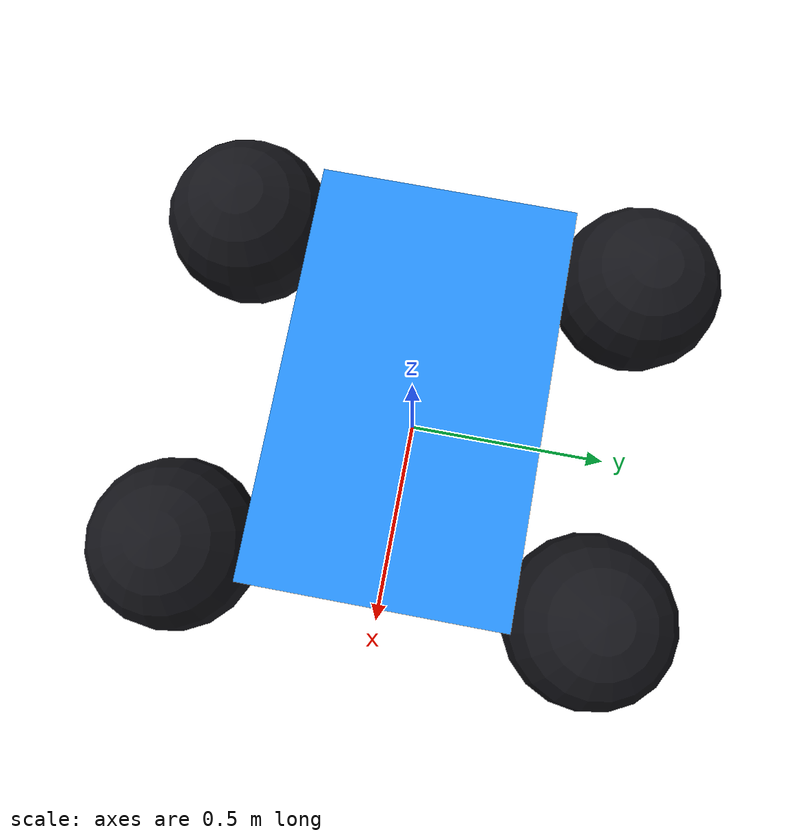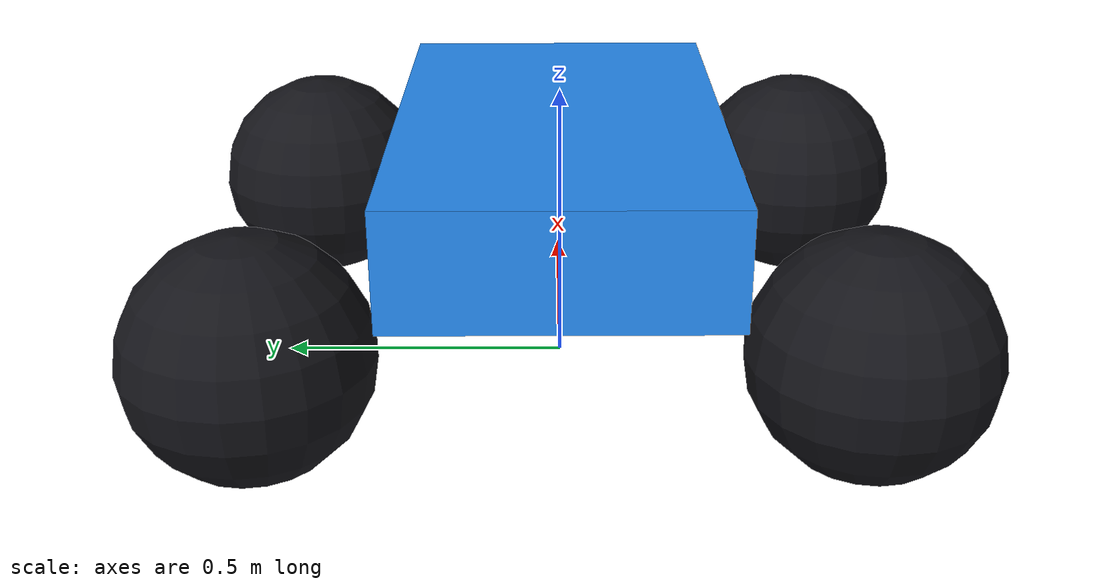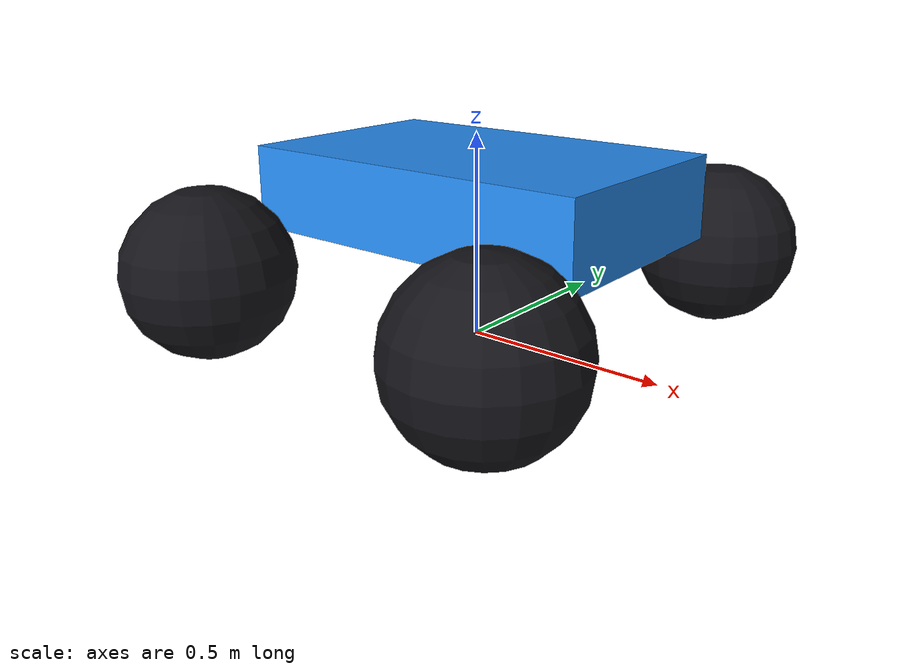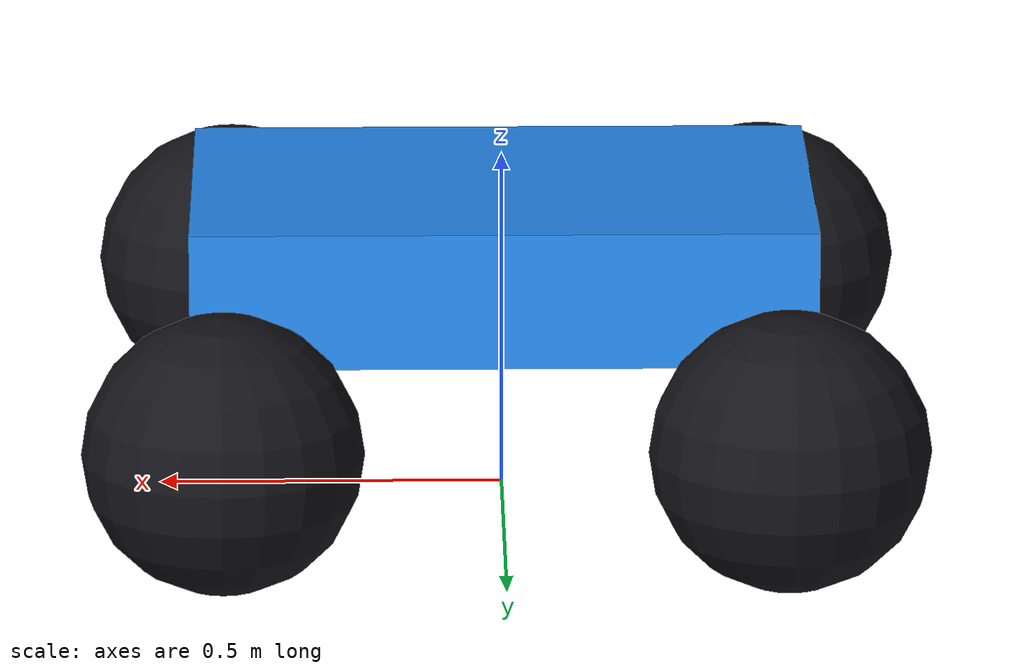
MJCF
<mujoco model="diffbot_race_v2">
  <!--
    Race chassis v2: freejoint + 4 contact wheels (sphere contacts, motor torque).
    Climb gentle ramps / light slip / soft susp. Godot Car Kit remains viewer-only.
  -->
  <option timestep="0.002" integrator="implicitfast" gravity="0 0 -9.81"
          cone="elliptic" impratio="3"/>

  <default>
    <geom contype="1" conaffinity="1" friction="1.6 0.01 0.001"
          condim="3" solref="0.004 1" solimp="0.9 0.95 0.001"/>
    <joint damping="0.05" armature="0.02"/>
    <default class="wheel">
      <!-- Spheres contact more stably than thin cylinders at speed. -->
      <geom type="sphere" size="0.2" friction="1.45 0.01 0.001"
            condim="3" rgba="0.08 0.08 0.1 1"/>
      <joint type="hinge" axis="0 1 0" damping="0.12" armature="0.025"/>
    </default>
    <default class="susp">
      <joint type="slide" axis="0 0 1" range="-0.035 0.015"
             stiffness="12000" damping="200" armature="0.001"/>
    </default>
  </default>

  <worldbody>
    <body name="chassis" pos="0 0 0.2">
      <freejoint name="root"/>
      <inertial pos="-0.05 0 0.04" mass="30" diaginertia="0.55 1.15 1.25"/>
      <geom name="chassis_box" type="box" size="0.45 0.28 0.1" pos="0 0 0.16"
            contype="0" conaffinity="0"
            rgba="0.15 0.55 0.95 1" friction="0.4 0.01 0.01"/>

      <body name="susp_fl" pos="0.4 0.48 0">
        <inertial pos="0 0 0" mass="0.4" diaginertia="0.001 0.001 0.001"/>
        <joint name="susp_fl" class="susp"/>
        <body name="wheel_fl" pos="0 0 0">
          <joint name="wheel_fl" class="wheel"/>
          <geom name="wheel_fl_geom" class="wheel" mass="1.2"/>
        </body>
      </body>
      <body name="susp_fr" pos="0.4 -0.48 0">
        <inertial pos="0 0 0" mass="0.4" diaginertia="0.001 0.001 0.001"/>
        <joint name="susp_fr" class="susp"/>
        <body name="wheel_fr" pos="0 0 0">
          <joint name="wheel_fr" class="wheel"/>
          <geom name="wheel_fr_geom" class="wheel" mass="1.2"/>
        </body>
      </body>
      <body name="susp_rl" pos="-0.4 0.48 0">
        <inertial pos="0 0 0" mass="0.4" diaginertia="0.001 0.001 0.001"/>
        <joint name="susp_rl" class="susp"/>
        <body name="wheel_rl" pos="0 0 0">
          <joint name="wheel_rl" class="wheel"/>
          <geom name="wheel_rl_geom" class="wheel" mass="1.2"/>
        </body>
      </body>
      <body name="susp_rr" pos="-0.4 -0.48 0">
        <inertial pos="0 0 0" mass="0.4" diaginertia="0.001 0.001 0.001"/>
        <joint name="susp_rr" class="susp"/>
        <body name="wheel_rr" pos="0 0 0">
          <joint name="wheel_rr" class="wheel"/>
          <geom name="wheel_rr_geom" class="wheel" mass="1.2"/>
        </body>
      </body>
    </body>
  </worldbody>

  <actuator>
    <motor name="wheel_fl" joint="wheel_fl" gear="15" ctrlrange="-1 1"/>
    <motor name="wheel_fr" joint="wheel_fr" gear="15" ctrlrange="-1 1"/>
    <motor name="wheel_rl" joint="wheel_rl" gear="24" ctrlrange="-1 1"/>
    <motor name="wheel_rr" joint="wheel_rr" gear="24" ctrlrange="-1 1"/>
  </actuator>
</mujoco>
